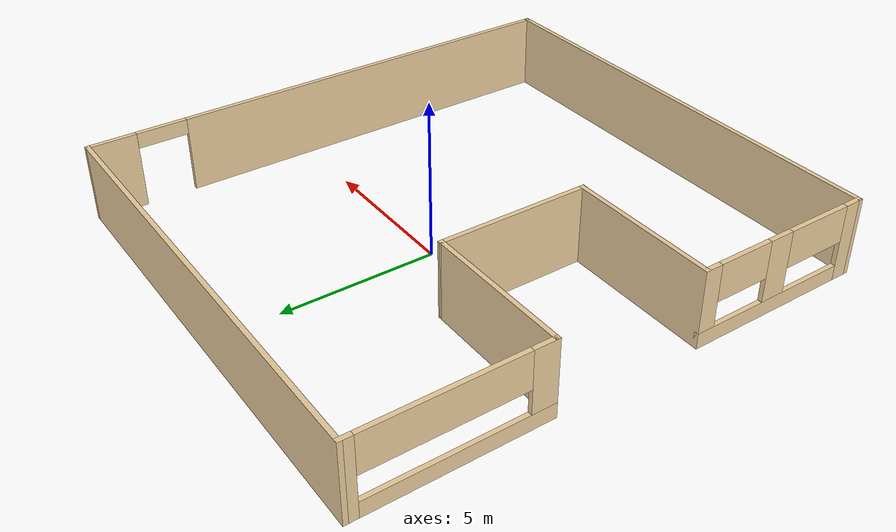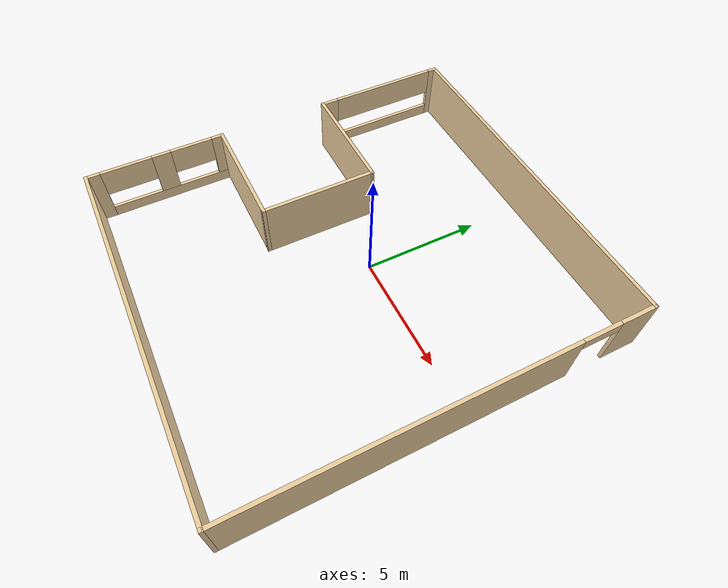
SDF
<?xml version='1.0'?>
<sdf version='1.6'>
  <model name='Building'>
    <pose frame=''>-0.0345 -0.973922 0 0 -0 0</pose>
    <link name='Wall_21'>
      <pose frame=''>7.4805 -7.8e-05 0 0 0 -1.5708</pose>
      <visual name='Wall_21_Visual_0'>
        <pose frame=''>-7.53043 0 1.25 0 -0 0</pose>
        <geometry>
          <box>
            <size>1.57115 0.15 2.5</size>
          </box>
        </geometry>
        <material>
          <script>
            <uri>file://media/materials/scripts/gazebo.material</uri>
            <name>Gazebo/Grey</name>
          </script>
          <ambient>0.921569 0.807843 0.615686 1</ambient>
        </material>
        <meta>
          <layer>0</layer>
        </meta>
      </visual>
      <collision name='Wall_21_Collision_0'>
        <geometry>
          <box>
            <size>1.57115 0.15 2.5</size>
          </box>
        </geometry>
        <pose frame=''>-7.53043 0 1.25 0 -0 0</pose>
      </collision>
      <visual name='Wall_21_Visual_1'>
        <pose frame=''>1.59668 0 1.25 0 -0 0</pose>
        <geometry>
          <box>
            <size>13.4386 0.15 2.5</size>
          </box>
        </geometry>
        <material>
          <script>
            <uri>file://media/materials/scripts/gazebo.material</uri>
            <name>Gazebo/Grey</name>
          </script>
          <ambient>0.921569 0.807843 0.615686 1</ambient>
        </material>
        <meta>
          <layer>0</layer>
        </meta>
      </visual>
      <collision name='Wall_21_Collision_1'>
        <geometry>
          <box>
            <size>13.4386 0.15 2.5</size>
          </box>
        </geometry>
        <pose frame=''>1.59668 0 1.25 0 -0 0</pose>
      </collision>
      <visual name='Wall_21_Visual_2'>
        <pose frame=''>-5.93375 0 2.25 0 -0 0</pose>
        <geometry>
          <box>
            <size>1.62221 0.15 0.5</size>
          </box>
        </geometry>
        <material>
          <script>
            <uri>file://media/materials/scripts/gazebo.material</uri>
            <name>Gazebo/Grey</name>
          </script>
          <ambient>0.921569 0.807843 0.615686 1</ambient>
        </material>
        <meta>
          <layer>0</layer>
        </meta>
      </visual>
      <collision name='Wall_21_Collision_2'>
        <geometry>
          <box>
            <size>1.62221 0.15 0.5</size>
          </box>
        </geometry>
        <pose frame=''>-5.93375 0 2.25 0 -0 0</pose>
      </collision>
    </link>
    <link name='Wall_23'>
      <collision name='Wall_23_Collision'>
        <geometry>
          <box>
            <size>15.111 0.15 2.5</size>
          </box>
        </geometry>
        <pose frame=''>0 0 1.25 0 -0 0</pose>
      </collision>
      <visual name='Wall_23_Visual'>
        <pose frame=''>0 0 1.25 0 -0 0</pose>
        <geometry>
          <box>
            <size>15.111 0.15 2.5</size>
          </box>
        </geometry>
        <material>
          <script>
            <uri>file://media/materials/scripts/gazebo.material</uri>
            <name>Gazebo/Grey</name>
          </script>
          <ambient>0.921569 0.807843 0.615686 1</ambient>
        </material>
        <meta>
          <layer>0</layer>
        </meta>
      </visual>
      <pose frame=''>0 -8.24108 0 0 -0 3.14159</pose>
    </link>
    <link name='Wall_25'>
      <pose frame=''>-7.4805 -5.31608 0 0 -0 1.5708</pose>
      <visual name='Wall_25_Visual_0'>
        <pose frame=''>-2.67841 0 1.25 0 -0 0</pose>
        <geometry>
          <box>
            <size>0.64318 0.15 2.5</size>
          </box>
        </geometry>
        <material>
          <script>
            <uri>file://media/materials/scripts/gazebo.material</uri>
            <name>Gazebo/Grey</name>
          </script>
          <ambient>0.921569 0.807843 0.615686 1</ambient>
        </material>
        <meta>
          <layer>0</layer>
        </meta>
      </visual>
      <collision name='Wall_25_Collision_0'>
        <geometry>
          <box>
            <size>0.64318 0.15 2.5</size>
          </box>
        </geometry>
        <pose frame=''>-2.67841 0 1.25 0 -0 0</pose>
      </collision>
      <visual name='Wall_25_Visual_1'>
        <pose frame=''>0.32159 0 0.25 0 -0 0</pose>
        <geometry>
          <box>
            <size>5.35682 0.15 0.5</size>
          </box>
        </geometry>
        <material>
          <script>
            <uri>file://media/materials/scripts/gazebo.material</uri>
            <name>Gazebo/Grey</name>
          </script>
          <ambient>0.921569 0.807843 0.615686 1</ambient>
        </material>
        <meta>
          <layer>0</layer>
        </meta>
      </visual>
      <collision name='Wall_25_Collision_1'>
        <geometry>
          <box>
            <size>5.35682 0.15 0.5</size>
          </box>
        </geometry>
        <pose frame=''>0.32159 0 0.25 0 -0 0</pose>
      </collision>
      <visual name='Wall_25_Visual_2'>
        <pose frame=''>0.217062 0 1.5 0 -0 0</pose>
        <geometry>
          <box>
            <size>0.812026 0.15 2</size>
          </box>
        </geometry>
        <material>
          <script>
            <uri>file://media/materials/scripts/gazebo.material</uri>
            <name>Gazebo/Grey</name>
          </script>
          <ambient>0.921569 0.807843 0.615686 1</ambient>
        </material>
        <meta>
          <layer>0</layer>
        </meta>
      </visual>
      <collision name='Wall_25_Collision_2'>
        <geometry>
          <box>
            <size>0.812026 0.15 2</size>
          </box>
        </geometry>
        <pose frame=''>0.217062 0 1.5 0 -0 0</pose>
      </collision>
      <visual name='Wall_25_Visual_3'>
        <pose frame=''>2.71705 0 1.5 0 -0 0</pose>
        <geometry>
          <box>
            <size>0.565891 0.15 2</size>
          </box>
        </geometry>
        <material>
          <script>
            <uri>file://media/materials/scripts/gazebo.material</uri>
            <name>Gazebo/Grey</name>
          </script>
          <ambient>0.921569 0.807843 0.615686 1</ambient>
        </material>
        <meta>
          <layer>0</layer>
        </meta>
      </visual>
      <collision name='Wall_25_Collision_3'>
        <geometry>
          <box>
            <size>0.565891 0.15 2</size>
          </box>
        </geometry>
        <pose frame=''>2.71705 0 1.5 0 -0 0</pose>
      </collision>
      <visual name='Wall_25_Visual_4'>
        <pose frame=''>-1.27289 0 1.9 0 -0 0</pose>
        <geometry>
          <box>
            <size>2.16787 0.15 1.2</size>
          </box>
        </geometry>
        <material>
          <script>
            <uri>file://media/materials/scripts/gazebo.material</uri>
            <name>Gazebo/Grey</name>
          </script>
          <ambient>0.921569 0.807843 0.615686 1</ambient>
        </material>
        <meta>
          <layer>0</layer>
        </meta>
      </visual>
      <collision name='Wall_25_Collision_4'>
        <geometry>
          <box>
            <size>2.16787 0.15 1.2</size>
          </box>
        </geometry>
        <pose frame=''>-1.27289 0 1.9 0 -0 0</pose>
      </collision>
      <visual name='Wall_25_Visual_5'>
        <pose frame=''>1.52859 0 1.9 0 -0 0</pose>
        <geometry>
          <box>
            <size>1.81103 0.15 1.2</size>
          </box>
        </geometry>
        <material>
          <script>
            <uri>file://media/materials/scripts/gazebo.material</uri>
            <name>Gazebo/Grey</name>
          </script>
          <ambient>0.921569 0.807843 0.615686 1</ambient>
        </material>
        <meta>
          <layer>0</layer>
        </meta>
      </visual>
      <collision name='Wall_25_Collision_5'>
        <geometry>
          <box>
            <size>1.81103 0.15 1.2</size>
          </box>
        </geometry>
        <pose frame=''>1.52859 0 1.9 0 -0 0</pose>
      </collision>
    </link>
    <link name='Wall_27'>
      <pose frame=''>-7.40456 5.31608 0 0 0 -1.5708</pose>
      <visual name='Wall_27_Visual_0'>
        <pose frame=''>-2.78728 0 1.25 0 -0 0</pose>
        <geometry>
          <box>
            <size>0.425441 0.15 2.5</size>
          </box>
        </geometry>
        <material>
          <script>
            <uri>file://media/materials/scripts/gazebo.material</uri>
            <name>Gazebo/Grey</name>
          </script>
          <ambient>0.921569 0.807843 0.615686 1</ambient>
        </material>
        <meta>
          <layer>0</layer>
        </meta>
      </visual>
      <collision name='Wall_27_Collision_0'>
        <geometry>
          <box>
            <size>0.425441 0.15 2.5</size>
          </box>
        </geometry>
        <pose frame=''>-2.78728 0 1.25 0 -0 0</pose>
      </collision>
      <visual name='Wall_27_Visual_1'>
        <pose frame=''>0.21272 0 0.25 0 -0 0</pose>
        <geometry>
          <box>
            <size>5.57456 0.15 0.5</size>
          </box>
        </geometry>
        <material>
          <script>
            <uri>file://media/materials/scripts/gazebo.material</uri>
            <name>Gazebo/Grey</name>
          </script>
          <ambient>0.921569 0.807843 0.615686 1</ambient>
        </material>
        <meta>
          <layer>0</layer>
        </meta>
      </visual>
      <collision name='Wall_27_Collision_1'>
        <geometry>
          <box>
            <size>5.57456 0.15 0.5</size>
          </box>
        </geometry>
        <pose frame=''>0.21272 0 0.25 0 -0 0</pose>
      </collision>
      <visual name='Wall_27_Visual_2'>
        <pose frame=''>2.60341 0 1.5 0 -0 0</pose>
        <geometry>
          <box>
            <size>0.793177 0.15 2</size>
          </box>
        </geometry>
        <material>
          <script>
            <uri>file://media/materials/scripts/gazebo.material</uri>
            <name>Gazebo/Grey</name>
          </script>
          <ambient>0.921569 0.807843 0.615686 1</ambient>
        </material>
        <meta>
          <layer>0</layer>
        </meta>
      </visual>
      <collision name='Wall_27_Collision_2'>
        <geometry>
          <box>
            <size>0.793177 0.15 2</size>
          </box>
        </geometry>
        <pose frame=''>2.60341 0 1.5 0 -0 0</pose>
      </collision>
      <visual name='Wall_27_Visual_3'>
        <pose frame=''>-0.183868 0 1.9 0 -0 0</pose>
        <geometry>
          <box>
            <size>4.78138 0.15 1.2</size>
          </box>
        </geometry>
        <material>
          <script>
            <uri>file://media/materials/scripts/gazebo.material</uri>
            <name>Gazebo/Grey</name>
          </script>
          <ambient>0.921569 0.807843 0.615686 1</ambient>
        </material>
        <meta>
          <layer>0</layer>
        </meta>
      </visual>
      <collision name='Wall_27_Collision_3'>
        <geometry>
          <box>
            <size>4.78138 0.15 1.2</size>
          </box>
        </geometry>
        <pose frame=''>-0.183868 0 1.9 0 -0 0</pose>
      </collision>
    </link>
    <link name='Wall_29'>
      <collision name='Wall_29_Collision'>
        <geometry>
          <box>
            <size>5 0.15 2.5</size>
          </box>
        </geometry>
        <pose frame=''>0 0 1.25 0 -0 0</pose>
      </collision>
      <visual name='Wall_29_Visual'>
        <pose frame=''>0 0 1.25 0 -0 0</pose>
        <geometry>
          <box>
            <size>5 0.15 2.5</size>
          </box>
        </geometry>
        <material>
          <script>
            <uri>file://media/materials/scripts/gazebo.material</uri>
            <name>Gazebo/Grey</name>
          </script>
          <ambient>0.921569 0.807843 0.615686 1</ambient>
        </material>
        <meta>
          <layer>0</layer>
        </meta>
      </visual>
      <pose frame=''>-5.0555 -2.39108 0 0 -0 0</pose>
    </link>
    <link name='Wall_31'>
      <collision name='Wall_31_Collision'>
        <geometry>
          <box>
            <size>4.93122 0.15 2.5</size>
          </box>
        </geometry>
        <pose frame=''>0 0 1.25 0 -0 0</pose>
      </collision>
      <visual name='Wall_31_Visual'>
        <pose frame=''>0 0 1.25 0 -0 0</pose>
        <geometry>
          <box>
            <size>4.93122 0.15 2.5</size>
          </box>
        </geometry>
        <material>
          <script>
            <uri>file://media/materials/scripts/gazebo.material</uri>
            <name>Gazebo/Grey</name>
          </script>
          <ambient>0.921569 0.807843 0.615686 1</ambient>
        </material>
        <meta>
          <layer>0</layer>
        </meta>
      </visual>
      <pose frame=''>-5.01395 2.39108 0 0 -0 0</pose>
    </link>
    <link name='Wall_32'>
      <collision name='Wall_32_Collision'>
        <geometry>
          <box>
            <size>4.94559 0.15 2.5</size>
          </box>
        </geometry>
        <pose frame=''>0 0 1.25 0 -0 0</pose>
      </collision>
      <visual name='Wall_32_Visual'>
        <pose frame=''>0 0 1.25 0 -0 0</pose>
        <geometry>
          <box>
            <size>4.94559 0.15 2.5</size>
          </box>
        </geometry>
        <material>
          <script>
            <uri>file://media/materials/scripts/gazebo.material</uri>
            <name>Gazebo/Grey</name>
          </script>
          <ambient>0.921569 0.807843 0.615686 1</ambient>
        </material>
        <meta>
          <layer>0</layer>
        </meta>
      </visual>
      <pose frame=''>-2.62742 -0.006716 0 0 0 -1.5725</pose>
    </link>
    <link name='Wall_9'>
      <collision name='Wall_9_Collision'>
        <geometry>
          <box>
            <size>15.0351 0.15 2.5</size>
          </box>
        </geometry>
        <pose frame=''>0 0 1.25 0 -0 0</pose>
      </collision>
      <visual name='Wall_9_Visual'>
        <pose frame=''>0 0 1.25 0 -0 0</pose>
        <geometry>
          <box>
            <size>15.0351 0.15 2.5</size>
          </box>
        </geometry>
        <material>
          <script>
            <uri>file://media/materials/scripts/gazebo.material</uri>
            <name>Gazebo/Grey</name>
          </script>
          <ambient>0.921569 0.807843 0.615686 1</ambient>
        </material>
        <meta>
          <layer>0</layer>
        </meta>
      </visual>
      <pose frame=''>0.037971 8.241 0 0 0 -1.1e-05</pose>
    </link>
    <static>1</static>
  </model>
</sdf>
